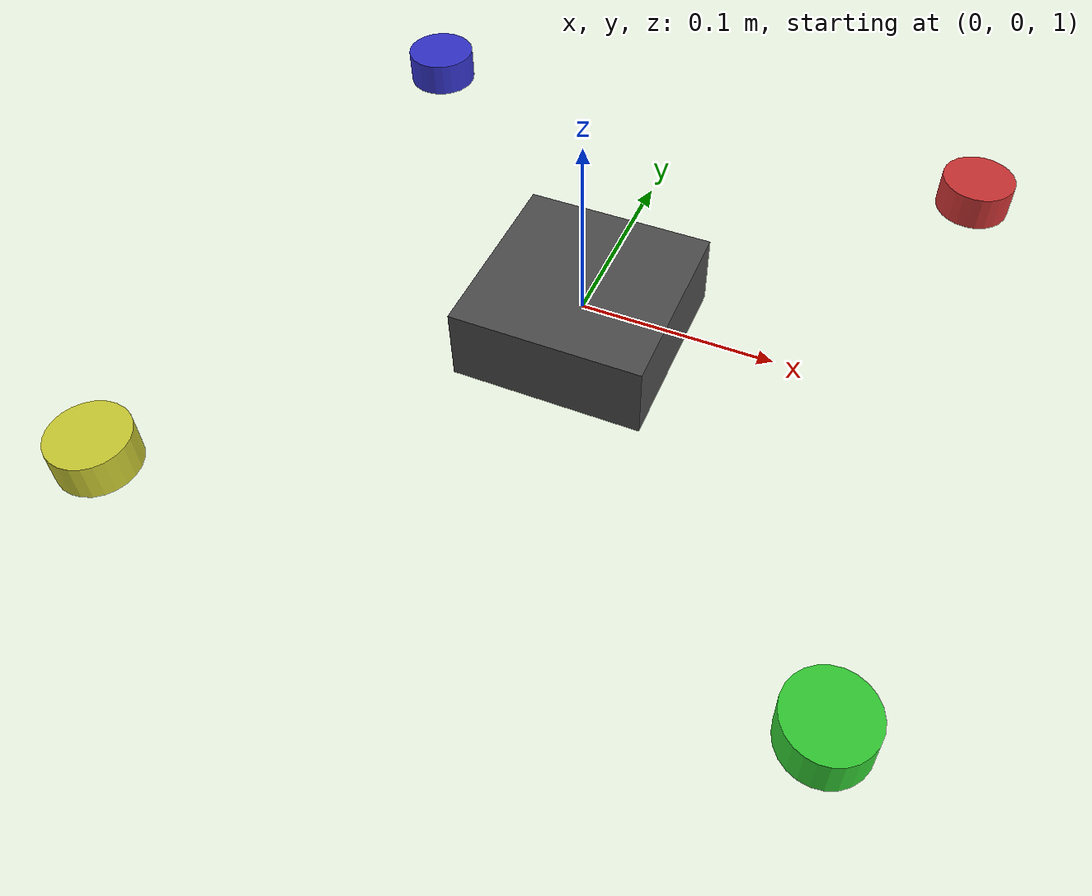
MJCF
<mujoco model="quadrotor">
  <option timestep="0.01" gravity="0 0 -9.81"/>

  <asset>
    <texture name="grid" type="2d" builtin="checker" width="512" height="512"
             rgb1="0.1 0.2 0.3" rgb2="0.2 0.3 0.4"/>
    <material name="grid" texture="grid" texrepeat="1 1" texuniform="true" reflectance="0.2"/>
    <material name="obstacle" rgba="0.8 0.2 0.2 0.5"/>
  </asset>

  <worldbody>
    <!-- Ground plane -->
    <geom name="floor" pos="0 0 0" size="10 10 0.1" type="plane"
          material="grid" condim="3" friction="1 0.005 0.0001"/>

    <!-- Quadrotor body -->
    <body name="quadrotor" pos="0 0 1">
      <!-- Main body (box) -->
      <geom name="body" type="box" size="0.05 0.05 0.02"
            mass="0.5" rgba="0.3 0.3 0.3 1"/>

      <!-- Motors (4 motors at corners) -->
      <body name="motor_fl" pos="0.17 0.17 0">
        <geom name="motor_fl_geom" type="cylinder" size="0.02 0.01"
              mass="0.01" rgba="0.8 0.2 0.2 1"/>
        <joint name="motor_fl_joint" type="hinge" axis="0 0 1" damping="0.01"/>
      </body>

      <body name="motor_fr" pos="0.17 -0.17 0">
        <geom name="motor_fr_geom" type="cylinder" size="0.02 0.01"
              mass="0.01" rgba="0.2 0.8 0.2 1"/>
        <joint name="motor_fr_joint" type="hinge" axis="0 0 1" damping="0.01"/>
      </body>

      <body name="motor_bl" pos="-0.17 0.17 0">
        <geom name="motor_bl_geom" type="cylinder" size="0.02 0.01"
              mass="0.01" rgba="0.2 0.2 0.8 1"/>
        <joint name="motor_bl_joint" type="hinge" axis="0 0 1" damping="0.01"/>
      </body>

      <body name="motor_br" pos="-0.17 -0.17 0">
        <geom name="motor_br_geom" type="cylinder" size="0.02 0.01"
              mass="0.01" rgba="0.8 0.8 0.2 1"/>
        <joint name="motor_br_joint" type="hinge" axis="0 0 1" damping="0.01"/>
      </body>

      <!-- Free joint for 6 DOF motion -->
      <freejoint name="quadrotor_free"/>
    </body>

    <!-- Obstacles will be inserted here by model generator -->
  </worldbody>

  <actuator>
    <!-- Motor actuators (thrust control) -->
    <motor name="motor_fl_act" joint="motor_fl_joint" gear="1"
           ctrllimited="true" ctrlrange="0 1"/>
    <motor name="motor_fr_act" joint="motor_fr_joint" gear="1"
           ctrllimited="true" ctrlrange="0 1"/>
    <motor name="motor_bl_act" joint="motor_bl_joint" gear="1"
           ctrllimited="true" ctrlrange="0 1"/>
    <motor name="motor_br_act" joint="motor_br_joint" gear="1"
           ctrllimited="true" ctrlrange="0 1"/>
  </actuator>
</mujoco>
